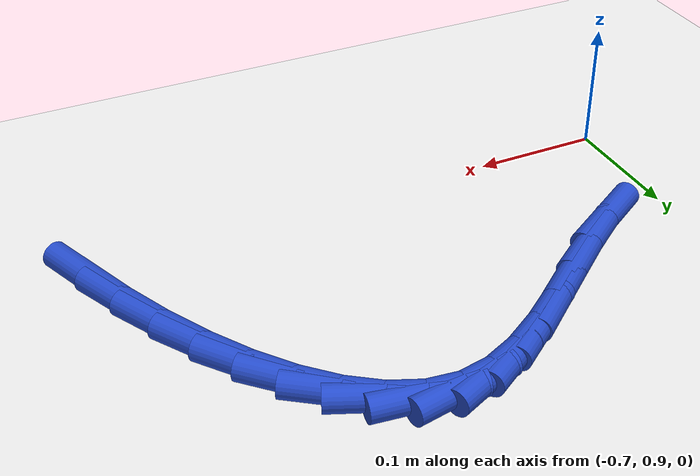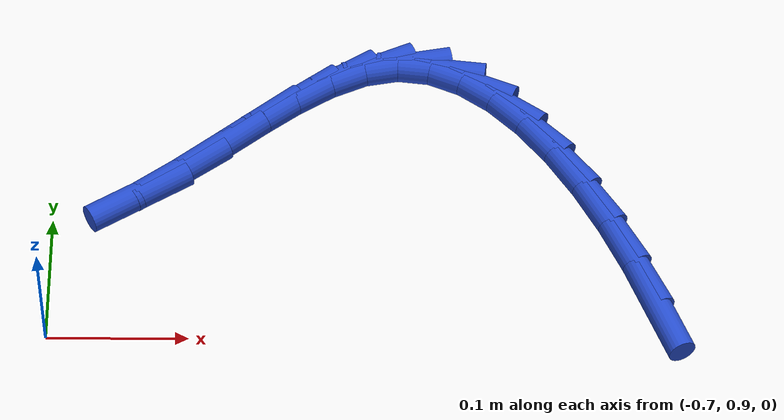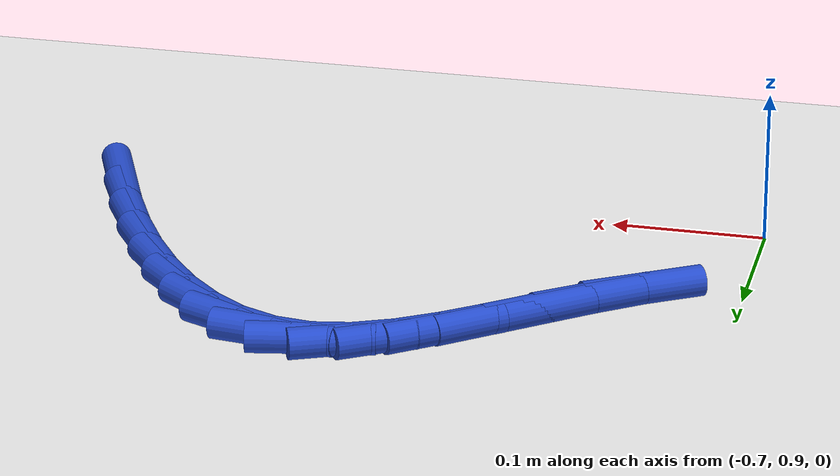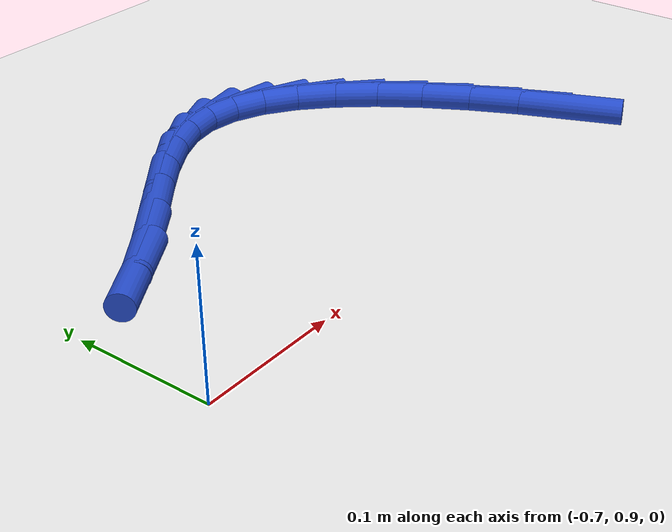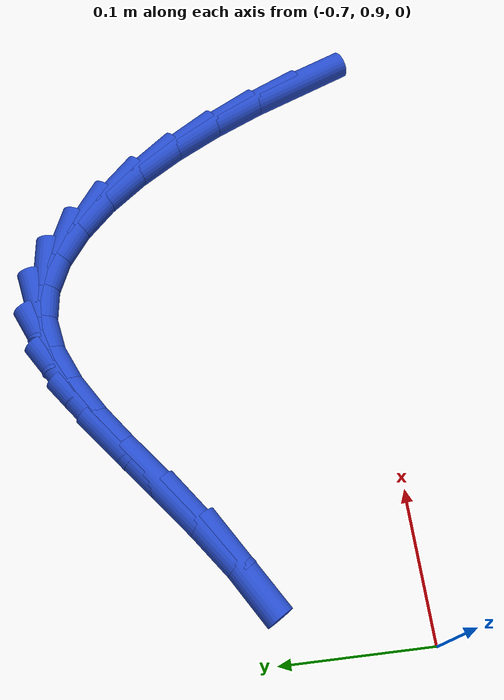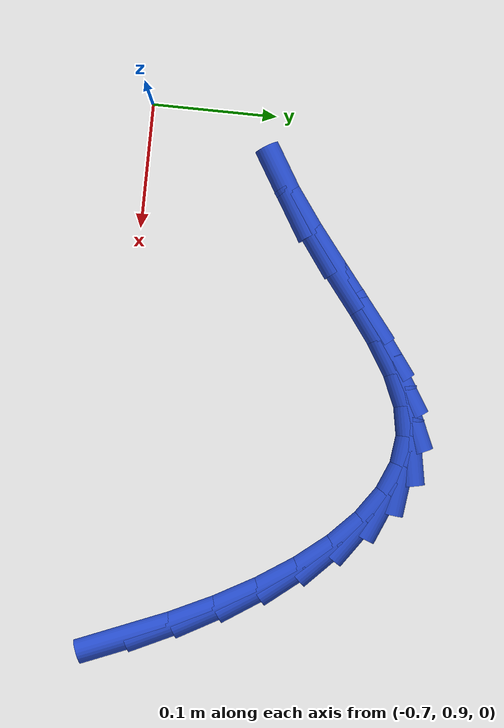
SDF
<sdf version="1.6">
 <world name="default">
  <model name="ground_plane">
   <static>1</static>
   <link name="link">
    <collision name="collision">
     <geometry><plane><normal>0 0 1</normal><size>100 100</size></plane></geometry>
     <surface><friction><ode><mu>100</mu><mu2>50</mu2></ode></friction></surface>
    </collision>
    <visual name="visual">
     <cast_shadows>0</cast_shadows>
     <geometry><plane><normal>0 0 1</normal><size>100 100</size></plane></geometry>
     <material>
      <script><uri>file://media/materials/scripts/gazebo.material</uri><name>Gazebo/WhiteGlow</name></script>
     </material>
    </visual>
   </link>
  </model>
  <model name="line">
   <link name="link_30">
    <pose>-0.2706007002910211 0.9213859839529296 0.01 0 1.57 -1.1801029023143292</pose>
    <collision name="collision">
     <geometry><cylinder><radius>0.01</radius><length>0.08</length></cylinder></geometry>
    </collision>
    <visual name="visual">
     <material>
      <script><name>Gazebo/Blue</name><uri>file://media/materials/scripts/gazebo.material</uri></script>
     </material>
     <geometry><cylinder><radius>0.01</radius><length>0.08</length></cylinder></geometry>
    </visual>
   </link>
   <link name="link_31">
    <pose>-0.28556412742650505 0.9577168214629356 0.01 0 1.57 -1.1244365351144154</pose>
    <collision name="collision">
     <geometry><cylinder><radius>0.01</radius><length>0.08</length></cylinder></geometry>
    </collision>
    <visual name="visual">
     <material>
      <script><name>Gazebo/Blue</name><uri>file://media/materials/scripts/gazebo.material</uri></script>
     </material>
     <geometry><cylinder><radius>0.01</radius><length>0.08</length></cylinder></geometry>
    </visual>
   </link>
   <link name="link_32">
    <pose>-0.3022721670567716 0.9926290062555804 0.01 0 1.57 -1.0609370057740528</pose>
    <collision name="collision">
     <geometry><cylinder><radius>0.01</radius><length>0.08</length></cylinder></geometry>
    </collision>
    <visual name="visual">
     <material>
      <script><name>Gazebo/Blue</name><uri>file://media/materials/scripts/gazebo.material</uri></script>
     </material>
     <geometry><cylinder><radius>0.01</radius><length>0.08</length></cylinder></geometry>
    </visual>
   </link>
   <link name="link_33">
    <pose>-0.3205599480980508 1.0253339959159533 0.01 0 1.57 -0.9852098294130419</pose>
    <collision name="collision">
     <geometry><cylinder><radius>0.01</radius><length>0.08</length></cylinder></geometry>
    </collision>
    <visual name="visual">
     <material>
      <script><name>Gazebo/Blue</name><uri>file://media/materials/scripts/gazebo.material</uri></script>
     </material>
     <geometry><cylinder><radius>0.01</radius><length>0.08</length></cylinder></geometry>
    </visual>
   </link>
   <link name="link_34">
    <pose>-0.34026259946657217 1.055043248029145 0.01 0 1.57 -0.8910732900235412</pose>
    <collision name="collision">
     <geometry><cylinder><radius>0.01</radius><length>0.08</length></cylinder></geometry>
    </collision>
    <visual name="visual">
     <material>
      <script><name>Gazebo/Blue</name><uri>file://media/materials/scripts/gazebo.material</uri></script>
     </material>
     <geometry><cylinder><radius>0.01</radius><length>0.08</length></cylinder></geometry>
    </visual>
   </link>
   <link name="link_35">
    <pose>-0.3612152500785656 1.0809682201802453 0.01 0 1.57 -0.769597908262072</pose>
    <collision name="collision">
     <geometry><cylinder><radius>0.01</radius><length>0.08</length></cylinder></geometry>
    </collision>
    <visual name="visual">
     <material>
      <script><name>Gazebo/Blue</name><uri>file://media/materials/scripts/gazebo.material</uri></script>
     </material>
     <geometry><cylinder><radius>0.01</radius><length>0.08</length></cylinder></geometry>
    </visual>
   </link>
   <link name="link_36">
    <pose>-0.38325302885026125 1.1023203699543451 0.01 0 1.57 -0.6083881529841033</pose>
    <collision name="collision">
     <geometry><cylinder><radius>0.01</radius><length>0.08</length></cylinder></geometry>
    </collision>
    <visual name="visual">
     <material>
      <script><name>Gazebo/Blue</name><uri>file://media/materials/scripts/gazebo.material</uri></script>
     </material>
     <geometry><cylinder><radius>0.01</radius><length>0.08</length></cylinder></geometry>
    </visual>
   </link>
   <link name="link_37">
    <pose>-0.40621106469788876 1.1183111549365337 0.01 0 1.57 -0.3933632440185412</pose>
    <collision name="collision">
     <geometry><cylinder><radius>0.01</radius><length>0.08</length></cylinder></geometry>
    </collision>
    <visual name="visual">
     <material>
      <script><name>Gazebo/Blue</name><uri>file://media/materials/scripts/gazebo.material</uri></script>
     </material>
     <geometry><cylinder><radius>0.01</radius><length>0.08</length></cylinder></geometry>
    </visual>
   </link>
   <link name="link_38">
    <pose>-0.4299244865376779 1.1281520327119012 0.01 0 1.57 -0.1188592308754398</pose>
    <collision name="collision">
     <geometry><cylinder><radius>0.01</radius><length>0.08</length></cylinder></geometry>
    </collision>
    <visual name="visual">
     <material>
      <script><name>Gazebo/Blue</name><uri>file://media/materials/scripts/gazebo.material</uri></script>
     </material>
     <geometry><cylinder><radius>0.01</radius><length>0.08</length></cylinder></geometry>
    </visual>
   </link>
   <link name="link_39">
    <pose>-0.45422842328585855 1.1310544608655382 0.01 0 1.57 0.1834991508332692</pose>
    <collision name="collision">
     <geometry><cylinder><radius>0.01</radius><length>0.08</length></cylinder></geometry>
    </collision>
    <visual name="visual">
     <material>
      <script><name>Gazebo/Blue</name><uri>file://media/materials/scripts/gazebo.material</uri></script>
     </material>
     <geometry><cylinder><radius>0.01</radius><length>0.08</length></cylinder></geometry>
    </visual>
   </link>
   <link name="link_40">
    <pose>-0.4789802070878139 1.1264608549065698 0.01 0 1.57 0.41629968458068795</pose>
    <collision name="collision">
     <geometry><cylinder><radius>0.01</radius><length>0.08</length></cylinder></geometry>
    </collision>
    <visual name="visual">
     <material>
      <script><name>Gazebo/Blue</name><uri>file://media/materials/scripts/gazebo.material</uri></script>
     </material>
     <geometry><cylinder><radius>0.01</radius><length>0.08</length></cylinder></geometry>
    </visual>
   </link>
   <link name="link_41">
    <pose>-0.5041818103560564 1.1153181779753298 0.01 0 1.57 0.5606284082201763</pose>
    <collision name="collision">
     <geometry><cylinder><radius>0.01</radius><length>0.08</length></cylinder></geometry>
    </collision>
    <visual name="visual">
     <material>
      <script><name>Gazebo/Blue</name><uri>file://media/materials/scripts/gazebo.material</uri></script>
     </material>
     <geometry><cylinder><radius>0.01</radius><length>0.08</length></cylinder></geometry>
    </visual>
   </link>
   <link name="link_42">
    <pose>-0.5298931333997976 1.0991759590224295 0.01 0 1.57 0.6405676982673846</pose>
    <collision name="collision">
     <geometry><cylinder><radius>0.01</radius><length>0.08</length></cylinder></geometry>
    </collision>
    <visual name="visual">
     <material>
      <script><name>Gazebo/Blue</name><uri>file://media/materials/scripts/gazebo.material</uri></script>
     </material>
     <geometry><cylinder><radius>0.01</radius><length>0.08</length></cylinder></geometry>
    </visual>
   </link>
   <link name="link_43">
    <pose>-0.5561742306519719 1.0795853301929763 0.01 0 1.57 0.6738150242233553</pose>
    <collision name="collision">
     <geometry><cylinder><radius>0.01</radius><length>0.08</length></cylinder></geometry>
    </collision>
    <visual name="visual">
     <material>
      <script><name>Gazebo/Blue</name><uri>file://media/materials/scripts/gazebo.material</uri></script>
     </material>
     <geometry><cylinder><radius>0.01</radius><length>0.08</length></cylinder></geometry>
    </visual>
   </link>
   <link name="link_44">
    <pose>-0.5830851565455125 1.058097423632077 0.01 0 1.57 0.6692693817183377</pose>
    <collision name="collision">
     <geometry><cylinder><radius>0.01</radius><length>0.08</length></cylinder></geometry>
    </collision>
    <visual name="visual">
     <material>
      <script><name>Gazebo/Blue</name><uri>file://media/materials/scripts/gazebo.material</uri></script>
     </material>
     <geometry><cylinder><radius>0.01</radius><length>0.08</length></cylinder></geometry>
    </visual>
   </link>
   <link name="link_45">
    <pose>-0.6106859655133539 1.0362633714848393 0.01 0 1.57 0.6290348099635539</pose>
    <collision name="collision">
     <geometry><cylinder><radius>0.01</radius><length>0.08</length></cylinder></geometry>
    </collision>
    <visual name="visual">
     <material>
      <script><name>Gazebo/Blue</name><uri>file://media/materials/scripts/gazebo.material</uri></script>
     </material>
     <geometry><cylinder><radius>0.01</radius><length>0.08</length></cylinder></geometry>
    </visual>
   </link>
   <link name="link_46">
    <pose>-0.6390367119884288 1.0156343058963704 0.01 0 1.57 0.5498590718017157</pose>
    <collision name="collision">
     <geometry><cylinder><radius>0.01</radius><length>0.08</length></cylinder></geometry>
    </collision>
    <visual name="visual">
     <material>
      <script><name>Gazebo/Blue</name><uri>file://media/materials/scripts/gazebo.material</uri></script>
     </material>
     <geometry><cylinder><radius>0.01</radius><length>0.08</length></cylinder></geometry>
    </visual>
   </link>
  </model>
 </world>
</sdf>
